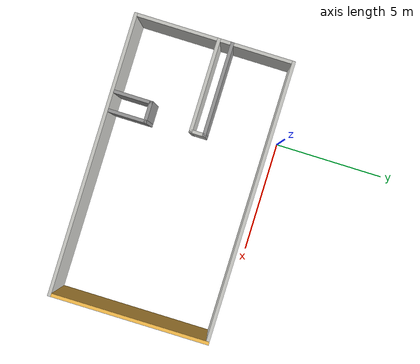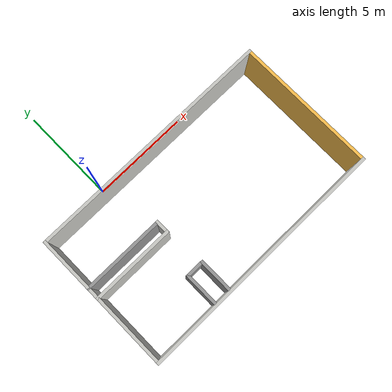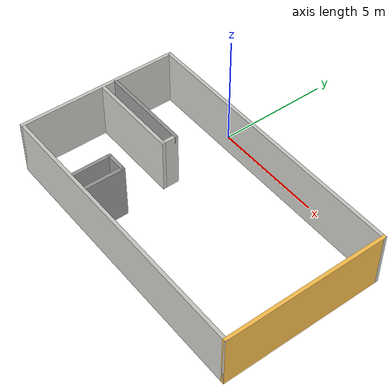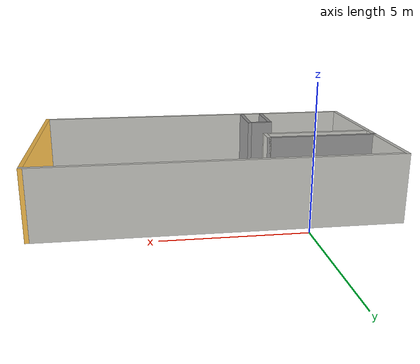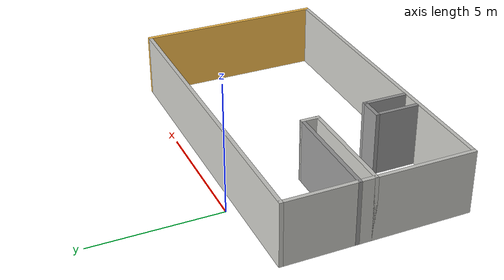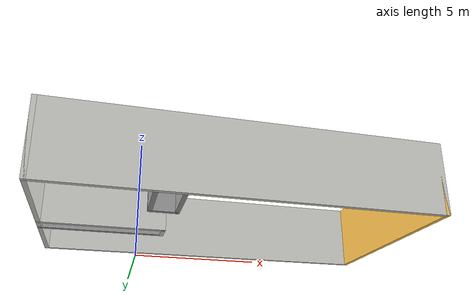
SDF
<?xml version='1.0'?>
<sdf version='1.6'>
  <model name='jannat2_area'>
    <pose frame=''>2.8771 -4.01857 0 0 -0 0</pose>
    <link name='Wall_1'>
      <collision name='Wall_1_Collision'>
        <geometry>
          <box>
            <size>12.75 0.15 2.5</size>
          </box>
        </geometry>
        <pose frame=''>0 0 1.25 0 -0 0</pose>
      </collision>
      <visual name='Wall_1_Visual'>
        <pose frame=''>0 0 1.25 0 -0 0</pose>
        <geometry>
          <box>
            <size>12.75 0.15 2.5</size>
          </box>
        </geometry>
        <material>
          <script>
            <uri>file://media/materials/scripts/gazebo.material</uri>
            <name>Gazebo/CeilingTiled</name>
          </script>
          <ambient>1 0.764706 0.305882 1</ambient>
        </material>
        <meta>
          <layer>0</layer>
        </meta>
      </visual>
      <pose frame=''>-0 -3.55 0 0 -0 0</pose>
    </link>
    <link name='Wall_12'>
      <collision name='Wall_12_Collision'>
        <geometry>
          <box>
            <size>4.25 0.15 2.5</size>
          </box>
        </geometry>
        <pose frame=''>0 0 1.25 0 -0 0</pose>
      </collision>
      <visual name='Wall_12_Visual'>
        <pose frame=''>0 0 1.25 0 -0 0</pose>
        <geometry>
          <box>
            <size>4.25 0.15 2.5</size>
          </box>
        </geometry>
        <material>
          <script>
            <uri>file://media/materials/scripts/gazebo.material</uri>
            <name>Gazebo/Grey</name>
          </script>
          <ambient>1 1 1 1</ambient>
        </material>
        <meta>
          <layer>0</layer>
        </meta>
      </visual>
      <pose frame=''>-4.25 0.787536 0 0 -0 0</pose>
    </link>
    <link name='Wall_13'>
      <collision name='Wall_13_Collision'>
        <geometry>
          <box>
            <size>0.75 0.15 2.5</size>
          </box>
        </geometry>
        <pose frame=''>0 0 1.25 0 -0 0</pose>
      </collision>
      <visual name='Wall_13_Visual'>
        <pose frame=''>0 0 1.25 0 -0 0</pose>
        <geometry>
          <box>
            <size>0.75 0.15 2.5</size>
          </box>
        </geometry>
        <material>
          <script>
            <uri>file://media/materials/scripts/gazebo.material</uri>
            <name>Gazebo/CeilingTiled</name>
          </script>
          <ambient>1 1 1 1</ambient>
        </material>
        <meta>
          <layer>0</layer>
        </meta>
      </visual>
      <pose frame=''>-2.2 0.487536 0 0 -0 -1.5708</pose>
    </link>
    <link name='Wall_14'>
      <collision name='Wall_14_Collision'>
        <geometry>
          <box>
            <size>4.25 0.15 2.5</size>
          </box>
        </geometry>
        <pose frame=''>0 0 1.25 0 -0 0</pose>
      </collision>
      <visual name='Wall_14_Visual'>
        <pose frame=''>0 0 1.25 0 -0 0</pose>
        <geometry>
          <box>
            <size>4.25 0.15 2.5</size>
          </box>
        </geometry>
        <material>
          <script>
            <uri>file://media/materials/scripts/gazebo.material</uri>
            <name>Gazebo/CeilingTiled</name>
          </script>
          <ambient>1 1 1 1</ambient>
        </material>
        <meta>
          <layer>0</layer>
        </meta>
      </visual>
      <pose frame=''>-4.25 0.187536 0 0 -0 3.14159</pose>
    </link>
    <link name='Wall_2'>
      <collision name='Wall_2_Collision'>
        <geometry>
          <box>
            <size>7.25 0.15 2.5</size>
          </box>
        </geometry>
        <pose frame=''>0 0 1.25 0 -0 0</pose>
      </collision>
      <visual name='Wall_2_Visual'>
        <pose frame=''>0 0 1.25 0 -0 0</pose>
        <geometry>
          <box>
            <size>7.25 0.15 2.5</size>
          </box>
        </geometry>
        <material>
          <script>
            <uri>file://media/materials/scripts/gazebo.material</uri>
            <name>Gazebo/Grey</name>
          </script>
          <ambient>1 0.764706 0.305882 1</ambient>
        </material>
        <meta>
          <layer>0</layer>
        </meta>
      </visual>
      <pose frame=''>6.3 0 0 0 -0 1.5708</pose>
    </link>
    <link name='Wall_21'>
      <collision name='Wall_21_Collision'>
        <geometry>
          <box>
            <size>1.75 0.15 2.5</size>
          </box>
        </geometry>
        <pose frame=''>0 0 1.25 0 -0 0</pose>
      </collision>
      <visual name='Wall_21_Visual'>
        <pose frame=''>0 0 1.25 0 -0 0</pose>
        <geometry>
          <box>
            <size>1.75 0.15 2.5</size>
          </box>
        </geometry>
        <material>
          <script>
            <uri>file://media/materials/scripts/gazebo.material</uri>
            <name>Gazebo/Grey</name>
          </script>
          <ambient>1 1 1 1</ambient>
        </material>
        <meta>
          <layer>0</layer>
        </meta>
      </visual>
      <pose frame=''>-2.01493 -2.61008 0 0 -0 1.5708</pose>
    </link>
    <link name='Wall_22'>
      <collision name='Wall_22_Collision'>
        <geometry>
          <box>
            <size>1 0.15 2.5</size>
          </box>
        </geometry>
        <pose frame=''>0 0 1.25 0 -0 0</pose>
      </collision>
      <visual name='Wall_22_Visual'>
        <pose frame=''>0 0 1.25 0 -0 0</pose>
        <geometry>
          <box>
            <size>1 0.15 2.5</size>
          </box>
        </geometry>
        <material>
          <script>
            <uri>file://media/materials/scripts/gazebo.material</uri>
            <name>Gazebo/Grey</name>
          </script>
          <ambient>1 1 1 1</ambient>
        </material>
        <meta>
          <layer>0</layer>
        </meta>
      </visual>
      <pose frame=''>-2.43994 -1.81008 0 0 -0 3.14159</pose>
    </link>
    <link name='Wall_23'>
      <collision name='Wall_23_Collision'>
        <geometry>
          <box>
            <size>1.75 0.15 2.5</size>
          </box>
        </geometry>
        <pose frame=''>0 0 1.25 0 -0 0</pose>
      </collision>
      <visual name='Wall_23_Visual'>
        <pose frame=''>0 0 1.25 0 -0 0</pose>
        <geometry>
          <box>
            <size>1.75 0.15 2.5</size>
          </box>
        </geometry>
        <material>
          <script>
            <uri>file://media/materials/scripts/gazebo.material</uri>
            <name>Gazebo/Grey</name>
          </script>
          <ambient>1 1 1 1</ambient>
        </material>
        <meta>
          <layer>0</layer>
        </meta>
      </visual>
      <pose frame=''>-2.86494 -2.61008 0 0 -0 -1.5708</pose>
    </link>
    <link name='Wall_3'>
      <collision name='Wall_3_Collision'>
        <geometry>
          <box>
            <size>12.75 0.15 2.5</size>
          </box>
        </geometry>
        <pose frame=''>0 0 1.25 0 -0 0</pose>
      </collision>
      <visual name='Wall_3_Visual'>
        <pose frame=''>0 0 1.25 0 -0 0</pose>
        <geometry>
          <box>
            <size>12.75 0.15 2.5</size>
          </box>
        </geometry>
        <material>
          <script>
            <uri>file://media/materials/scripts/gazebo.material</uri>
            <name>Gazebo/CeilingTiled</name>
          </script>
          <ambient>1 0.764706 0.305882 1</ambient>
        </material>
        <meta>
          <layer>0</layer>
        </meta>
      </visual>
      <pose frame=''>-0 3.55 0 0 -0 3.14159</pose>
    </link>
    <link name='Wall_4'>
      <collision name='Wall_4_Collision'>
        <geometry>
          <box>
            <size>7.25 0.15 2.5</size>
          </box>
        </geometry>
        <pose frame=''>0 0 1.25 0 -0 0</pose>
      </collision>
      <visual name='Wall_4_Visual'>
        <pose frame=''>0 0 1.25 0 -0 0</pose>
        <geometry>
          <box>
            <size>7.25 0.15 2.5</size>
          </box>
        </geometry>
        <material>
          <script>
            <uri>file://media/materials/scripts/gazebo.material</uri>
            <name>Gazebo/CeilingTiled</name>
          </script>
          <ambient>1 0.764706 0.305882 1</ambient>
        </material>
        <meta>
          <layer>0</layer>
        </meta>
      </visual>
      <pose frame=''>-6.3 0 0 0 -0 -1.5708</pose>
    </link>
    <static>1</static>
  </model>
</sdf>
